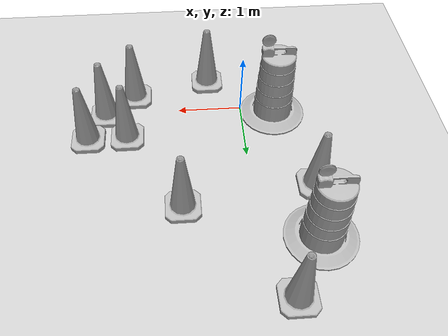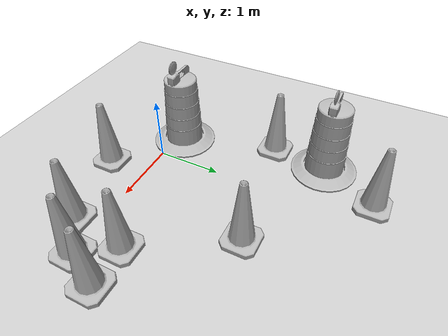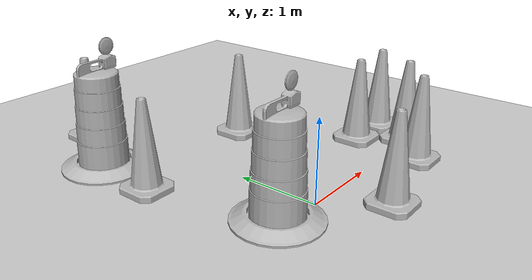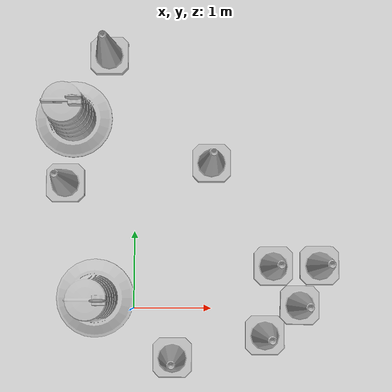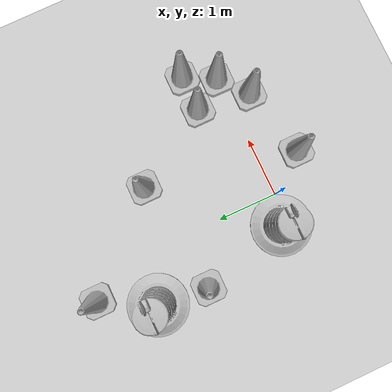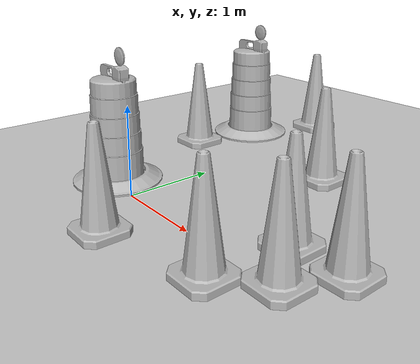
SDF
<sdf version="1.7">
 <world name="default">
  <light name="sun" type="directional">
   <pose>0 0 10 0 -0 0</pose>
   <diffuse>0.8 0.8 0.8 1</diffuse>
   <specular>0.2 0.2 0.2 1</specular>
   <attenuation>
    <range>1000</range>
    <constant>0.9</constant>
    <linear>0.01</linear>
    <quadratic>0.001</quadratic>
   </attenuation>
   <direction>-0.5 0.1 -0.9</direction>
   <spot><inner_angle>0</inner_angle><outer_angle>0</outer_angle><falloff>0</falloff></spot>
  </light>
  <model name="ground_plane">
   <static>1</static>
   <link name="link">
    <collision name="collision">
     <geometry><plane><normal>0 0 1</normal><size>100 100</size></plane></geometry>
     <surface>
      <contact><collide_bitmask>65535</collide_bitmask></contact>
      <friction><ode><mu>100</mu><mu2>50</mu2></ode></friction>
     </surface>
    </collision>
    <visual name="visual">
     <cast_shadows>0</cast_shadows>
     <geometry><plane><normal>0 0 1</normal><size>100 100</size></plane></geometry>
     <material>
      <script><uri>file://media/materials/scripts/gazebo.material</uri><name>Gazebo/Grey</name></script>
     </material>
    </visual>
   </link>
  </model>
  <gravity>0 0 -9.8</gravity>
  <magnetic_field>6e-06 2.3e-05 -4.2e-05</magnetic_field>
  <atmosphere type="adiabatic"/>
  <physics type="ode">
   <max_step_size>0.001</max_step_size>
   <real_time_factor>1</real_time_factor>
   <real_time_update_rate>1000</real_time_update_rate>
  </physics>
  <scene><ambient>0.4 0.4 0.4 1</ambient><background>0.7 0.7 0.7 1</background><shadows>1</shadows></scene>
  <spherical_coordinates>
   <surface_model>EARTH_WGS84</surface_model>
   <latitude_deg>0</latitude_deg>
   <longitude_deg>0</longitude_deg>
   <elevation>0</elevation>
   <heading_deg>0</heading_deg>
  </spherical_coordinates>
  <model name="Construction Cone">
   <link name="link">
    <collision name="collision">
     <geometry>
      <mesh><scale>10 10 10</scale><uri>model://construction_cone/meshes/construction_cone.dae</uri></mesh>
     </geometry>
    </collision>
    <visual name="visual">
     <geometry>
      <mesh><scale>10 10 10</scale><uri>model://construction_cone/meshes/construction_cone.dae</uri></mesh>
     </geometry>
    </visual>
    <inertial>
     <inertia><ixx>1</ixx><ixy>0</ixy><ixz>0</ixz><iyy>1</iyy><iyz>0</iyz><izz>1</izz></inertia>
     <mass>1</mass>
    </inertial>
   </link>
   <pose>2.15443 0.045641 -0 0 0 -0.017461</pose>
  </model>
  <model name="Construction Cone_0">
   <link name="link">
    <collision name="collision">
     <geometry>
      <mesh><scale>10 10 10</scale><uri>model://construction_cone/meshes/construction_cone.dae</uri></mesh>
     </geometry>
    </collision>
    <visual name="visual">
     <geometry>
      <mesh><scale>10 10 10</scale><uri>model://construction_cone/meshes/construction_cone.dae</uri></mesh>
     </geometry>
    </visual>
    <inertial>
     <inertia><ixx>1</ixx><ixy>0</ixy><ixz>0</ixz><iyy>1</iyy><iyz>0</iyz><izz>1</izz></inertia>
     <mass>1</mass>
    </inertial>
   </link>
   <pose>2.41574 0.559203 -1e-05 -0 -0 -0</pose>
  </model>
  <model name="Construction Barrel">
   <link name="link">
    <inertial>
     <pose>0 0 0.4 0 -0 0</pose>
     <mass>500</mass>
     <inertia><ixx>51.2096</ixx><iyy>51.2096</iyy><izz>25</izz><ixy>0</ixy><ixz>0</ixz><iyz>0</iyz></inertia>
    </inertial>
    <collision name="collision">
     <geometry><mesh><uri>model://construction_barrel/meshes/construction_barrel.dae</uri></mesh></geometry>
    </collision>
    <visual name="visual">
     <geometry><mesh><uri>model://construction_barrel/meshes/construction_barrel.dae</uri></mesh></geometry>
    </visual>
   </link>
   <pose>-0.506619 0.126661 -2e-06 1e-06 8e-06 -1.6e-05</pose>
  </model>
  <model name="Construction Barrel_0">
   <link name="link">
    <inertial>
     <pose>0 0 0.4 0 -0 0</pose>
     <mass>500</mass>
     <inertia><ixx>51.2096</ixx><iyy>51.2096</iyy><izz>25</izz><ixy>0</ixy><ixz>0</ixz><iyz>0</iyz></inertia>
    </inertial>
    <collision name="collision">
     <geometry><mesh><uri>model://construction_barrel/meshes/construction_barrel.dae</uri></mesh></geometry>
    </collision>
    <visual name="visual">
     <geometry><mesh><uri>model://construction_barrel/meshes/construction_barrel.dae</uri></mesh></geometry>
    </visual>
   </link>
   <pose>-0.818201 2.4822 -0 2e-06 -1e-06 -1.6e-05</pose>
  </model>
  <model name="Construction Cone_1">
   <link name="link">
    <collision name="collision">
     <geometry>
      <mesh><scale>10 10 10</scale><uri>model://construction_cone/meshes/construction_cone.dae</uri></mesh>
     </geometry>
    </collision>
    <visual name="visual">
     <geometry>
      <mesh><scale>10 10 10</scale><uri>model://construction_cone/meshes/construction_cone.dae</uri></mesh>
     </geometry>
    </visual>
    <inertial>
     <inertia><ixx>1</ixx><ixy>0</ixy><ixz>0</ixz><iyy>1</iyy><iyz>0</iyz><izz>1</izz></inertia>
     <mass>1</mass>
    </inertial>
   </link>
   <pose>1.70002 -0.343719 -1e-05 0 0 -6.3e-05</pose>
  </model>
  <model name="Construction Cone_2">
   <link name="link">
    <collision name="collision">
     <geometry>
      <mesh><scale>10 10 10</scale><uri>model://construction_cone/meshes/construction_cone.dae</uri></mesh>
     </geometry>
    </collision>
    <visual name="visual">
     <geometry>
      <mesh><scale>10 10 10</scale><uri>model://construction_cone/meshes/construction_cone.dae</uri></mesh>
     </geometry>
    </visual>
    <inertial>
     <inertia><ixx>1</ixx><ixy>0</ixy><ixz>0</ixz><iyy>1</iyy><iyz>0</iyz><izz>1</izz></inertia>
     <mass>1</mass>
    </inertial>
   </link>
   <pose>1.81385 0.550428 0 0 -0 0.002945</pose>
  </model>
  <model name="Construction Cone_3">
   <link name="link">
    <collision name="collision">
     <geometry>
      <mesh><scale>10 10 10</scale><uri>model://construction_cone/meshes/construction_cone.dae</uri></mesh>
     </geometry>
    </collision>
    <visual name="visual">
     <geometry>
      <mesh><scale>10 10 10</scale><uri>model://construction_cone/meshes/construction_cone.dae</uri></mesh>
     </geometry>
    </visual>
    <inertial>
     <inertia><ixx>1</ixx><ixy>0</ixy><ixz>0</ixz><iyy>1</iyy><iyz>0</iyz><izz>1</izz></inertia>
     <mass>1</mass>
    </inertial>
   </link>
   <pose>-0.913564 1.62939 -9e-06 0 -0 0</pose>
  </model>
  <model name="Construction Cone_4">
   <link name="link">
    <collision name="collision">
     <geometry>
      <mesh><scale>10 10 10</scale><uri>model://construction_cone/meshes/construction_cone.dae</uri></mesh>
     </geometry>
    </collision>
    <visual name="visual">
     <geometry>
      <mesh><scale>10 10 10</scale><uri>model://construction_cone/meshes/construction_cone.dae</uri></mesh>
     </geometry>
    </visual>
    <inertial>
     <inertia><ixx>1</ixx><ixy>0</ixy><ixz>0</ixz><iyy>1</iyy><iyz>0</iyz><izz>1</izz></inertia>
     <mass>1</mass>
    </inertial>
   </link>
   <pose>-0.354567 3.33419 -0 0 -1e-06 0</pose>
  </model>
  <model name="Construction Cone_5">
   <link name="link">
    <collision name="collision">
     <geometry>
      <mesh><scale>10 10 10</scale><uri>model://construction_cone/meshes/construction_cone.dae</uri></mesh>
     </geometry>
    </collision>
    <visual name="visual">
     <geometry>
      <mesh><scale>10 10 10</scale><uri>model://construction_cone/meshes/construction_cone.dae</uri></mesh>
     </geometry>
    </visual>
    <inertial>
     <inertia><ixx>1</ixx><ixy>0</ixy><ixz>0</ixz><iyy>1</iyy><iyz>0</iyz><izz>1</izz></inertia>
     <mass>1</mass>
    </inertial>
   </link>
   <pose>1.00649 1.8984 -0 0 -1e-06 0</pose>
  </model>
  <model name="Construction Cone_6">
   <link name="link">
    <collision name="collision">
     <geometry>
      <mesh><scale>10 10 10</scale><uri>model://construction_cone/meshes/construction_cone.dae</uri></mesh>
     </geometry>
    </collision>
    <visual name="visual">
     <geometry>
      <mesh><scale>10 10 10</scale><uri>model://construction_cone/meshes/construction_cone.dae</uri></mesh>
     </geometry>
    </visual>
    <inertial>
     <inertia><ixx>1</ixx><ixy>0</ixy><ixz>0</ixz><iyy>1</iyy><iyz>0</iyz><izz>1</izz></inertia>
     <mass>1</mass>
    </inertial>
   </link>
   <pose>0.502814 -0.635959 -0 0 -0 0</pose>
  </model>
 </world>
</sdf>
